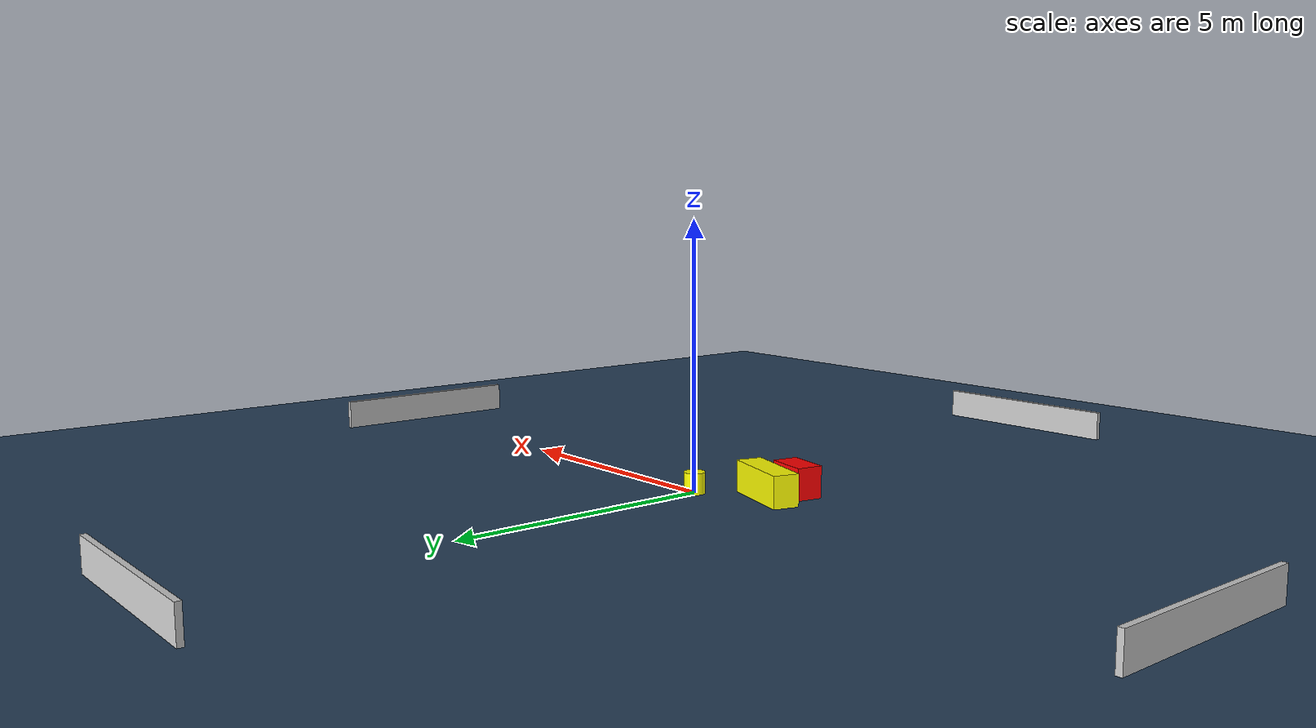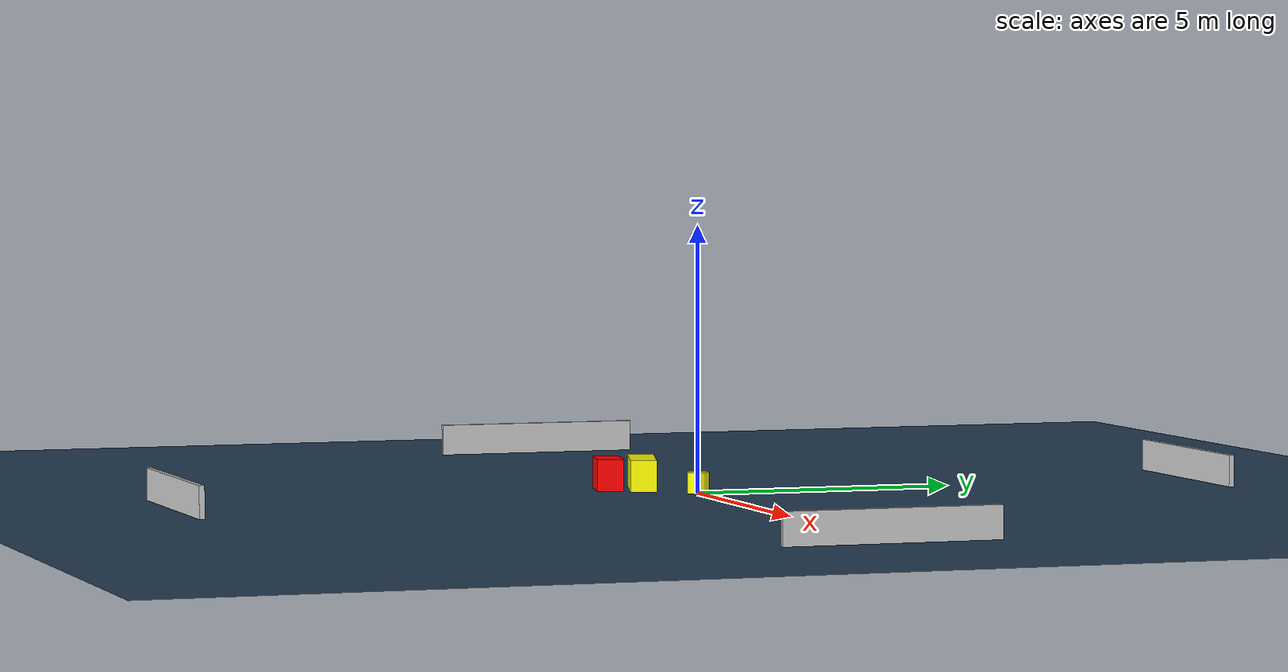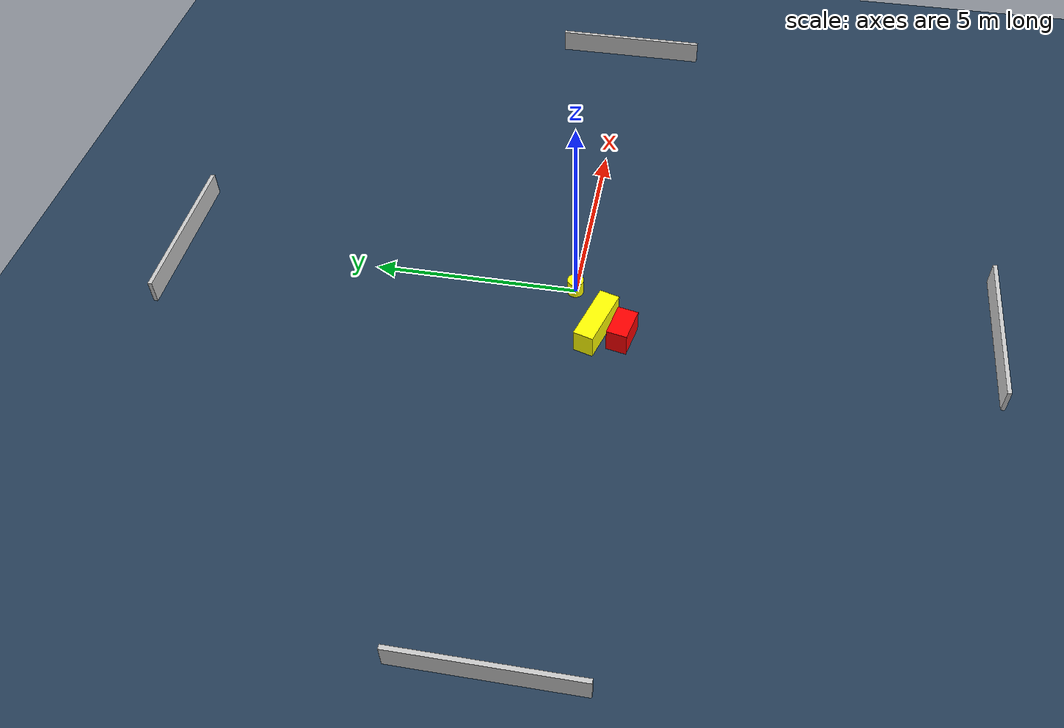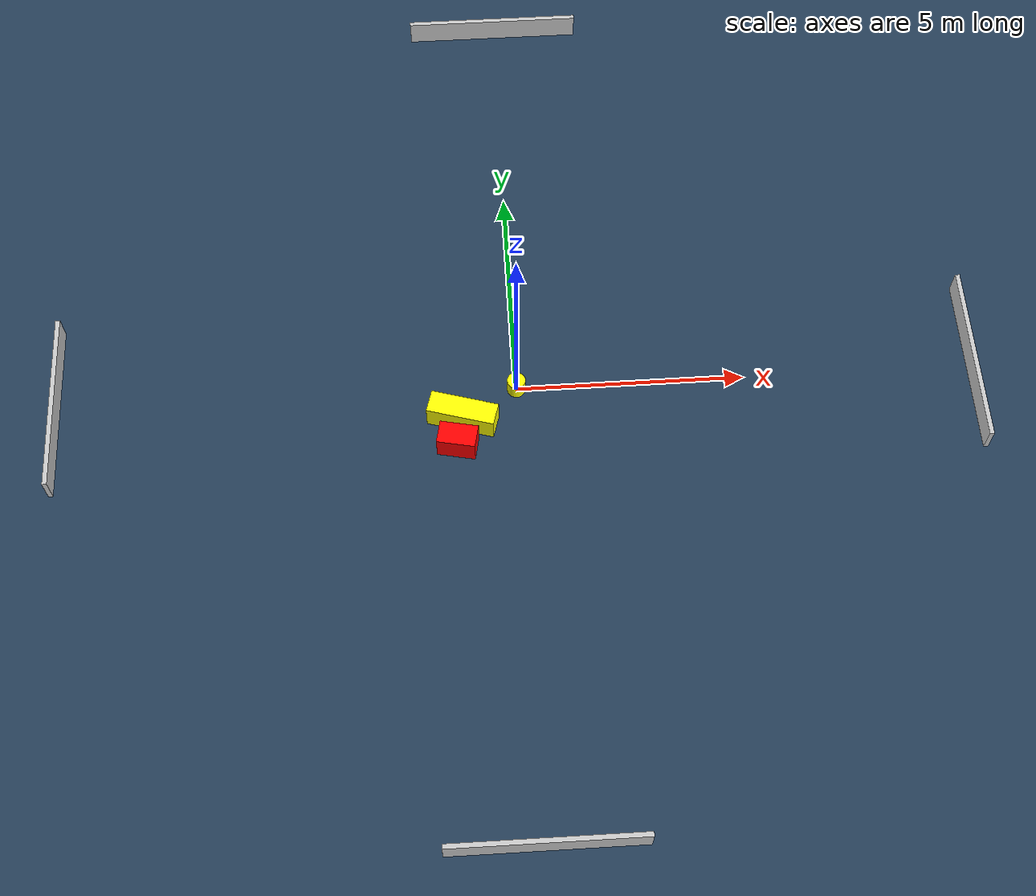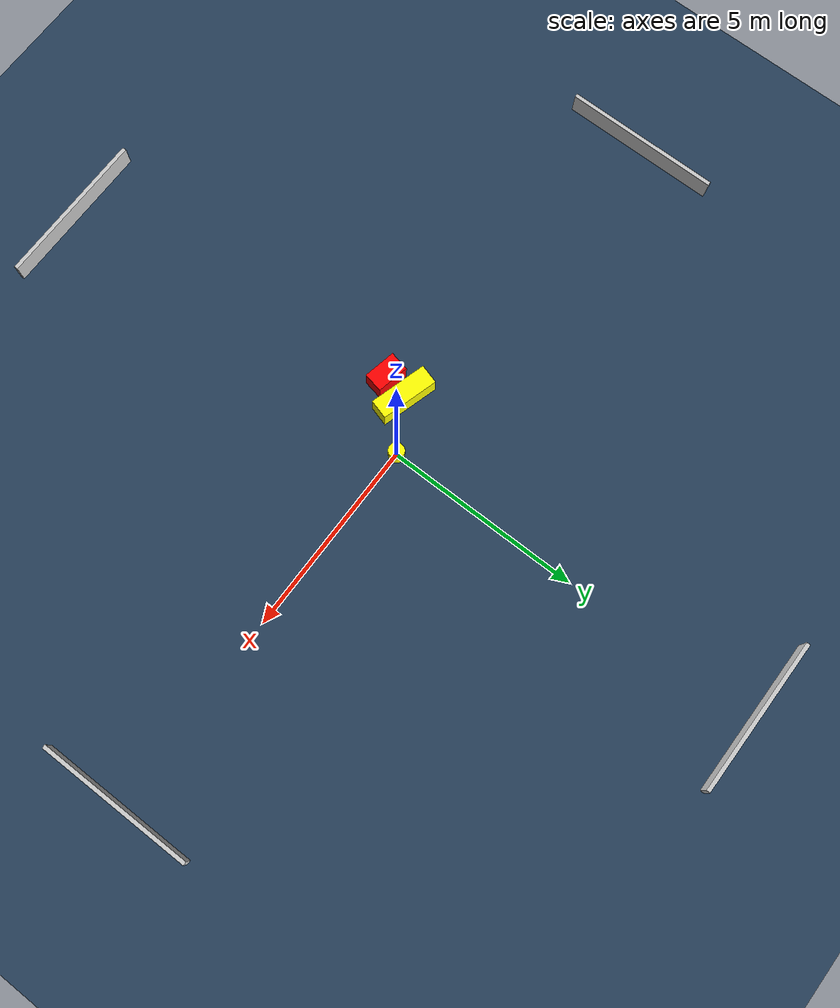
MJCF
<?xml version="1.0" ?>
<mujoco model="generated_environment">
  <option timestep="0.01" integrator="RK4" cone="elliptic"/>
  <default>
    <geom density="1"/>
  </default>
  <asset>
    <texture builtin="gradient" height="3072" name="skybox" rgb1="0.3 0.5 0.7" rgb2="0 0 0" type="skybox" width="512"/>
    <texture builtin="checker" height="300" name="groundplane" rgb1="0.2 0.3 0.4" rgb2="0.1 0.2 0.3" type="2d" width="300"/>
    <material name="groundplane" reflectance="0.2" texrepeat="5 5" texture="groundplane"/>
  </asset>
  <worldbody>
    <light dir="0 0 -1" directional="true" pos="0 0 1.5"/>
    <geom condim="3" friction="0.5 0.005 0.001" material="groundplane" name="floor" pos="0 0 0" size="0 0 0.05" type="plane"/>
    <body name="walls">
      <geom name="wall_1" condim="4" pos="-10.0 0.0 0.3" rgba="0.800000011920929 0.800000011920929 0.800000011920929 1.0" size="0.05 2.0 0.3" type="box"/>
      <geom name="wall_2" condim="4" pos="10.0 0.0 0.3" rgba="0.800000011920929 0.800000011920929 0.800000011920929 1.0" size="0.05 2.0 0.3" type="box"/>
      <geom name="wall_3" condim="4" pos="0.0 -10.0 0.3" rgba="0.800000011920929 0.800000011920929 0.800000011920929 1.0" size="2.0 0.05 0.3" type="box"/>
      <geom name="wall_4" condim="4" pos="0.0 10.0 0.3" rgba="0.800000011920929 0.800000011920929 0.800000011920929 1.0" size="2.0 0.05 0.3" type="box"/>
    </body>
    <body name="robot">
      <joint name="joint_x" type="slide" pos="0 0 0" axis="1 0 0"/>
      <joint name="joint_y" type="slide" pos="0 0 0" axis="0 1 0"/>
      <geom name="robot" type="cylinder" pos="0.0 0.0 0.2" size="0.2 0.2 0.0" mass="5.0" friction="1.0 0.005 0.0001" condim="4" rgba="1.0 1.0 0.0 1.0"/>
    </body>
    <body name="obstacle_1_movable">
      <geom name="obstacle_1_movable" condim="4" pos="-1.1984530556299153 -0.6975944027544574 0.3" euler="0 0 163.67639761195508" friction="0.0 0.005 0.001" rgba="1.0 1.0 0.0 1.0" size="0.739396953655048 0.24754271879610756 0.3" type="box" mass="0.1"/>
      <joint type="free"/>
    </body>
    <body name="obstacle_2_static">
      <geom name="obstacle_2_static" condim="4" pos="-1.3326460650565628 -1.3256105586378053 0.3" euler="0 0 168.40780830281392" friction="0.0 0.005 0.001" rgba="1.0 0.0 0.0 1.0" size="0.4145744879154052 0.24985648768534674 0.3" type="box"/>
    </body>
  </worldbody>
  <actuator>
    <motor name="actuator_x" joint="joint_x" gear="1" ctrlrange="-1 1"/>
    <motor name="actuator_y" joint="joint_y" gear="1" ctrlrange="-1 1"/>
  </actuator>
</mujoco>
